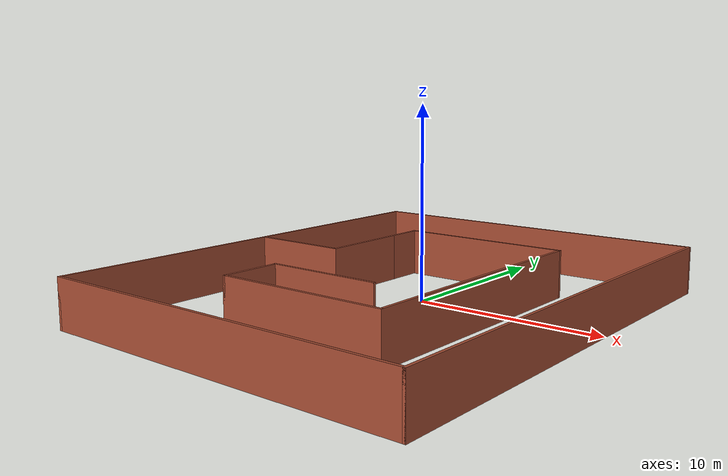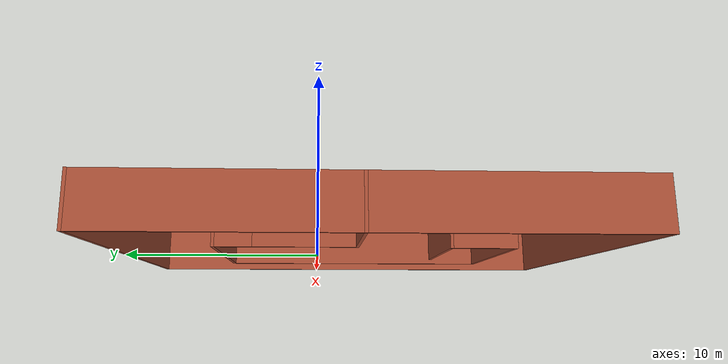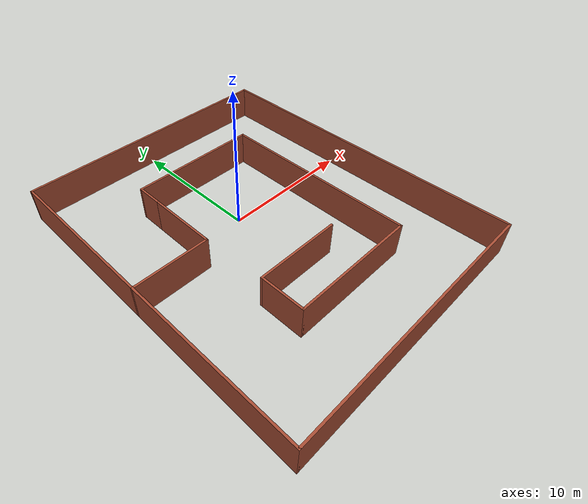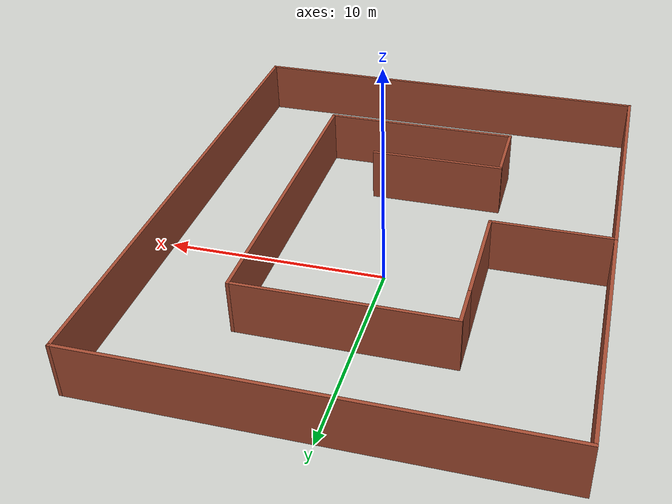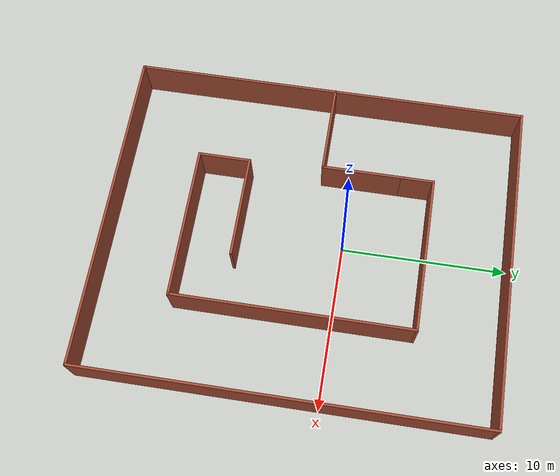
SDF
<?xml version='1.0'?>
<sdf version='1.6'>
  <model name='maze'>
    <pose frame=''>0.193998 -2.14533 0 0 -0 0</pose>
    <link name='Wall_0'>
      <collision name='Wall_0_Collision'>
        <geometry>
          <box>
            <size>5 0.15 2.5</size>
          </box>
        </geometry>
        <pose frame=''>0 0 1.25 0 -0 0</pose>
      </collision>
      <visual name='Wall_0_Visual'>
        <pose frame=''>0 0 1.25 0 -0 0</pose>
        <geometry>
          <box>
            <size>5 0.15 2.5</size>
          </box>
        </geometry>
        <material>
          <script>
            <uri>file://media/materials/scripts/gazebo.material</uri>
            <name>Gazebo/Bricks</name>
          </script>
          <ambient>1 1 1 1</ambient>
        </material>
        <meta>
          <layer>0</layer>
        </meta>
      </visual>
      <pose frame=''>-4.45 2.725 0 0 -0 1.5708</pose>
    </link>
    <link name='Wall_10'>
      <collision name='Wall_10_Collision'>
        <geometry>
          <box>
            <size>5.5 0.15 2.5</size>
          </box>
        </geometry>
        <pose frame=''>0 0 1.25 0 -0 0</pose>
      </collision>
      <visual name='Wall_10_Visual'>
        <pose frame=''>0 0 1.25 0 -0 0</pose>
        <geometry>
          <box>
            <size>5.5 0.15 2.5</size>
          </box>
        </geometry>
        <material>
          <script>
            <uri>file://media/materials/scripts/gazebo.material</uri>
            <name>Gazebo/Bricks</name>
          </script>
          <ambient>1 1 1 1</ambient>
        </material>
        <meta>
          <layer>0</layer>
        </meta>
      </visual>
      <pose frame=''>-7.125 0.3 0 0 -0 3.14159</pose>
    </link>
    <link name='Wall_11'>
      <collision name='Wall_11_Collision'>
        <geometry>
          <box>
            <size>12.5 0.15 2.5</size>
          </box>
        </geometry>
        <pose frame=''>0 0 1.25 0 -0 0</pose>
      </collision>
      <visual name='Wall_11_Visual'>
        <pose frame=''>0 0 1.25 0 -0 0</pose>
        <geometry>
          <box>
            <size>12.5 0.15 2.5</size>
          </box>
        </geometry>
        <material>
          <script>
            <uri>file://media/materials/scripts/gazebo.material</uri>
            <name>Gazebo/Bricks</name>
          </script>
          <ambient>1 1 1 1</ambient>
        </material>
        <meta>
          <layer>0</layer>
        </meta>
      </visual>
      <pose frame=''>-9.8 -5.875 0 0 -0 -1.5708</pose>
    </link>
    <link name='Wall_12'>
      <collision name='Wall_12_Collision'>
        <geometry>
          <box>
            <size>19.75 0.15 2.5</size>
          </box>
        </geometry>
        <pose frame=''>0 0 1.25 0 -0 0</pose>
      </collision>
      <visual name='Wall_12_Visual'>
        <pose frame=''>0 0 1.25 0 -0 0</pose>
        <geometry>
          <box>
            <size>19.75 0.15 2.5</size>
          </box>
        </geometry>
        <material>
          <script>
            <uri>file://media/materials/scripts/gazebo.material</uri>
            <name>Gazebo/Bricks</name>
          </script>
          <ambient>1 1 1 1</ambient>
        </material>
        <meta>
          <layer>0</layer>
        </meta>
      </visual>
      <pose frame=''>-1e-06 -12.05 0 0 -0 0</pose>
    </link>
    <link name='Wall_13'>
      <collision name='Wall_13_Collision'>
        <geometry>
          <box>
            <size>24.25 0.15 2.5</size>
          </box>
        </geometry>
        <pose frame=''>0 0 1.25 0 -0 0</pose>
      </collision>
      <visual name='Wall_13_Visual'>
        <pose frame=''>0 0 1.25 0 -0 0</pose>
        <geometry>
          <box>
            <size>24.25 0.15 2.5</size>
          </box>
        </geometry>
        <material>
          <script>
            <uri>file://media/materials/scripts/gazebo.material</uri>
            <name>Gazebo/Bricks</name>
          </script>
          <ambient>1 1 1 1</ambient>
        </material>
        <meta>
          <layer>0</layer>
        </meta>
      </visual>
      <pose frame=''>9.8 0 0 0 -0 1.5708</pose>
    </link>
    <link name='Wall_17'>
      <collision name='Wall_17_Collision'>
        <geometry>
          <box>
            <size>9.5 0.15 2.5</size>
          </box>
        </geometry>
        <pose frame=''>0 0 1.25 0 -0 0</pose>
      </collision>
      <visual name='Wall_17_Visual'>
        <pose frame=''>0 0 1.25 0 -0 0</pose>
        <geometry>
          <box>
            <size>9.5 0.15 2.5</size>
          </box>
        </geometry>
        <material>
          <script>
            <uri>file://media/materials/scripts/gazebo.material</uri>
            <name>Gazebo/Bricks</name>
          </script>
          <ambient>1 1 1 1</ambient>
        </material>
        <meta>
          <layer>0</layer>
        </meta>
      </visual>
      <pose frame=''>0.224999 7.05 0 0 -0 3.14159</pose>
    </link>
    <link name='Wall_18'>
      <collision name='Wall_18_Collision'>
        <geometry>
          <box>
            <size>2.05 0.15 2.5</size>
          </box>
        </geometry>
        <pose frame=''>0 0 1.25 0 -0 0</pose>
      </collision>
      <visual name='Wall_18_Visual'>
        <pose frame=''>0 0 1.25 0 -0 0</pose>
        <geometry>
          <box>
            <size>2.05 0.15 2.5</size>
          </box>
        </geometry>
        <material>
          <script>
            <uri>file://media/materials/scripts/gazebo.material</uri>
            <name>Gazebo/Bricks</name>
          </script>
          <ambient>1 1 1 1</ambient>
        </material>
        <meta>
          <layer>0</layer>
        </meta>
      </visual>
      <pose frame=''>-4.45 6.1 0 0 -0 -1.5708</pose>
    </link>
    <link name='Wall_20'>
      <collision name='Wall_20_Collision'>
        <geometry>
          <box>
            <size>19.75 0.15 2.5</size>
          </box>
        </geometry>
        <pose frame=''>0 0 1.25 0 -0 0</pose>
      </collision>
      <visual name='Wall_20_Visual'>
        <pose frame=''>0 0 1.25 0 -0 0</pose>
        <geometry>
          <box>
            <size>19.75 0.15 2.5</size>
          </box>
        </geometry>
        <material>
          <script>
            <uri>file://media/materials/scripts/gazebo.material</uri>
            <name>Gazebo/Bricks</name>
          </script>
          <ambient>1 1 1 1</ambient>
        </material>
        <meta>
          <layer>0</layer>
        </meta>
      </visual>
      <pose frame=''>-1e-06 12.05 0 0 -0 3.14159</pose>
    </link>
    <link name='Wall_21'>
      <collision name='Wall_21_Collision'>
        <geometry>
          <box>
            <size>11.75 0.15 2.5</size>
          </box>
        </geometry>
        <pose frame=''>0 0 1.25 0 -0 0</pose>
      </collision>
      <visual name='Wall_21_Visual'>
        <pose frame=''>0 0 1.25 0 -0 0</pose>
        <geometry>
          <box>
            <size>11.75 0.15 2.5</size>
          </box>
        </geometry>
        <material>
          <script>
            <uri>file://media/materials/scripts/gazebo.material</uri>
            <name>Gazebo/Bricks</name>
          </script>
          <ambient>1 1 1 1</ambient>
        </material>
        <meta>
          <layer>0</layer>
        </meta>
      </visual>
      <pose frame=''>-9.8 6.25 0 0 -0 -1.5708</pose>
    </link>
    <link name='Wall_3'>
      <collision name='Wall_3_Collision'>
        <geometry>
          <box>
            <size>6.25 0.15 2.5</size>
          </box>
        </geometry>
        <pose frame=''>0 0 1.25 0 -0 0</pose>
      </collision>
      <visual name='Wall_3_Visual'>
        <pose frame=''>0 0 1.25 0 -0 0</pose>
        <geometry>
          <box>
            <size>6.25 0.15 2.5</size>
          </box>
        </geometry>
        <material>
          <script>
            <uri>file://media/materials/scripts/gazebo.material</uri>
            <name>Gazebo/Bricks</name>
          </script>
          <ambient>1 1 1 1</ambient>
        </material>
        <meta>
          <layer>0</layer>
        </meta>
      </visual>
      <pose frame=''>-1.15 -4.2 0 0 -0 3.14159</pose>
    </link>
    <link name='Wall_4'>
      <collision name='Wall_4_Collision'>
        <geometry>
          <box>
            <size>3.25 0.15 2.5</size>
          </box>
        </geometry>
        <pose frame=''>0 0 1.25 0 -0 0</pose>
      </collision>
      <visual name='Wall_4_Visual'>
        <pose frame=''>0 0 1.25 0 -0 0</pose>
        <geometry>
          <box>
            <size>3.25 0.15 2.5</size>
          </box>
        </geometry>
        <material>
          <script>
            <uri>file://media/materials/scripts/gazebo.material</uri>
            <name>Gazebo/Bricks</name>
          </script>
          <ambient>1 1 1 1</ambient>
        </material>
        <meta>
          <layer>0</layer>
        </meta>
      </visual>
      <pose frame=''>-4.2 -5.75 0 0 -0 -1.5708</pose>
    </link>
    <link name='Wall_5'>
      <collision name='Wall_5_Collision'>
        <geometry>
          <box>
            <size>9.25 0.15 2.5</size>
          </box>
        </geometry>
        <pose frame=''>0 0 1.25 0 -0 0</pose>
      </collision>
      <visual name='Wall_5_Visual'>
        <pose frame=''>0 0 1.25 0 -0 0</pose>
        <geometry>
          <box>
            <size>9.25 0.15 2.5</size>
          </box>
        </geometry>
        <material>
          <script>
            <uri>file://media/materials/scripts/gazebo.material</uri>
            <name>Gazebo/Bricks</name>
          </script>
          <ambient>1 1 1 1</ambient>
        </material>
        <meta>
          <layer>0</layer>
        </meta>
      </visual>
      <pose frame=''>0.349999 -7.3 0 0 -0 0</pose>
    </link>
    <link name='Wall_6'>
      <collision name='Wall_6_Collision'>
        <geometry>
          <box>
            <size>14.5 0.15 2.5</size>
          </box>
        </geometry>
        <pose frame=''>0 0 1.25 0 -0 0</pose>
      </collision>
      <visual name='Wall_6_Visual'>
        <pose frame=''>0 0 1.25 0 -0 0</pose>
        <geometry>
          <box>
            <size>14.5 0.15 2.5</size>
          </box>
        </geometry>
        <material>
          <script>
            <uri>file://media/materials/scripts/gazebo.material</uri>
            <name>Gazebo/Bricks</name>
          </script>
          <ambient>1 1 1 1</ambient>
        </material>
        <meta>
          <layer>0</layer>
        </meta>
      </visual>
      <pose frame=''>4.9 -0.125 0 0 -0 1.5708</pose>
    </link>
    <static>1</static>
  </model>
</sdf>
